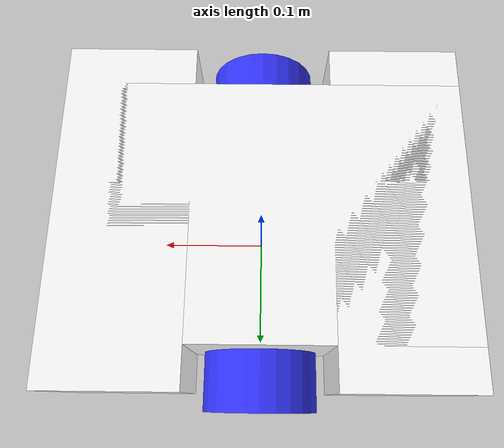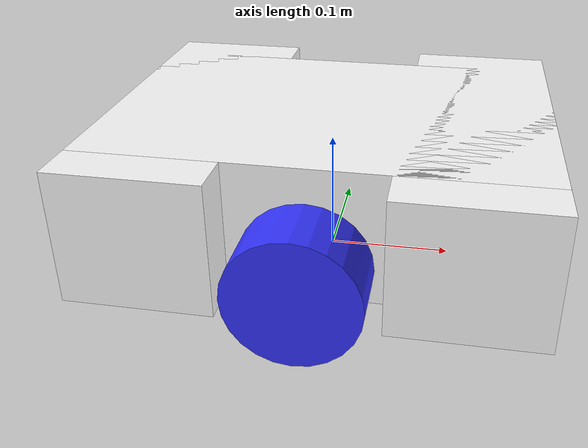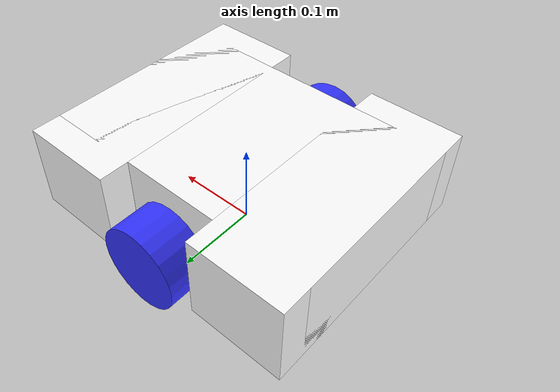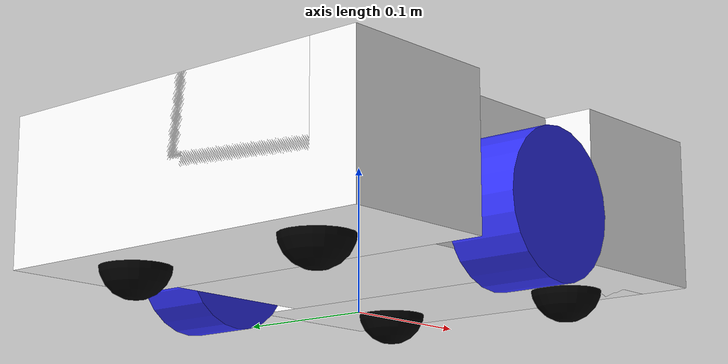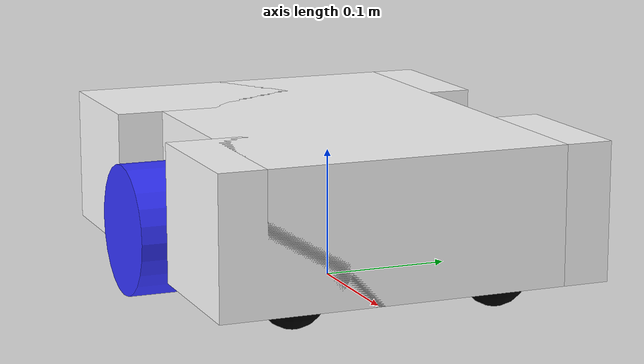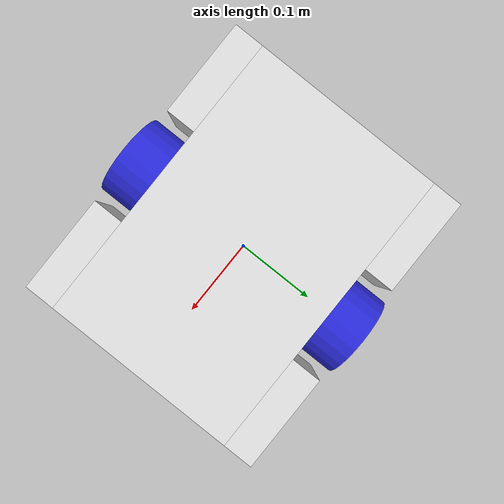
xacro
<?xml version="1.0"?>
<robot xmlns:xacro="http://www.ros.org/wiki/xacro">

    <xacro:include filename="inertial_macros.xacro"/>

    <material name="white">
        <color rgba="1 1 1 1"/>
    </material>

    <material name="orange">
        <color rgba="1.0 0.3 0.1 1"/>
    </material>

    <material name="blue">
        <color rgba="0.2 0.2 1 1"/>
    </material>

    <material name="black">
        <color rgba="0.0 0.0 0.0 1"/>
    </material>

    <!-- BASE LINK -->
    <link name="base_link">

    </link>

    <!-- BASE_FOOTPRINT LINK -->

    <joint name="base_footprint_joint" type="fixed">
        <parent link="base_link"/>
        <child link="base_footprint"/>
        <origin xyz="0 0 0" rpy="0 0 0"/>
    </joint>

    <link name="base_footprint">
    </link>

    <!-- CHASSIS LINK -->

    <joint name="chassis_joint" type="fixed">
        <parent link="base_link"/>
        <child link="chassis"/>
        <origin xyz="0 0 0"/>
    </joint>

    <link name="chassis">
        <visual>
            <origin xyz="0 0 0.075" rpy="0 0 0"/>
            <geometry>
                <box size="0.35 0.229 0.105"/>
            </geometry>
            <material name="white"/>
        </visual>
        <collision>
            <origin xyz="0 0 0.075" rpy="0 0 0"/>
            <geometry>
                <box size="0.35 0.229 0.105"/>
            </geometry>
        </collision>
        <xacro:inertial_box mass="0.5" x="0.35" y="0.229" z="0.105">
            <origin xyz="0 0 0.075" rpy="0 0 0"/>
        </xacro:inertial_box>
    </link>
    <gazebo reference="chassis">
        <material>Gazebo/White</material>
    </gazebo>

    <joint name="chassis1_joint" type="fixed">
        <parent link="chassis"/>
        <child link="chassis1"/>
        <origin xyz="0 0 0"/>
    </joint>

    <link name="chassis1">
        <visual>
            <origin xyz="0.1175 0 0.075" rpy="0 0 0"/>
            <geometry>
                <box size="0.115 0.3 0.105"/>
            </geometry>
            <material name="white"/>
        </visual>
        <collision>
            <origin xyz="0.1175 0 0.075" rpy="0 0 0"/>
            <geometry>
                <box size="0.115 0.3 0.105"/>
            </geometry>
        </collision>
        <xacro:inertial_box mass="0.5" x="0.115" y="0.3" z="0.105">
            <origin xyz="0.1175 0 0.075" rpy="0 0 0"/>
        </xacro:inertial_box>
    </link>
    <gazebo reference="chassis1">
        <material>Gazebo/White</material>
    </gazebo>

    <joint name="chassis2_joint" type="fixed">
        <parent link="chassis"/>
        <child link="chassis2"/>
        <origin xyz="0 0 0"/>
    </joint>

    <link name="chassis2">
        <visual>
            <origin xyz="-0.1175 0 0.075" rpy="0 0 0"/>
            <geometry>
                <box size="0.115 0.3 0.105"/>
            </geometry>
            <material name="white"/>
        </visual>
        <collision>
            <origin xyz="-0.1175 0 0.075" rpy="0 0 0"/>
            <geometry>
                <box size="0.115 0.3 0.105"/>
            </geometry>
        </collision>
        <xacro:inertial_box mass="0.5" x="0.115" y="0.3" z="0.105">
            <origin xyz="-0.1175 0 0.075" rpy="0 0 0"/>
        </xacro:inertial_box>
    </link>
    <gazebo reference="chassis2">
        <material>Gazebo/White</material>
    </gazebo>

    <!-- LEFT WHEEL LINK -->
    <joint name="left_wheel_joint" type="continuous">
        <parent link="base_link"/>
        <child link="left_wheel"/>
        <origin xyz="0 0.14 0.05037517" rpy="-${pi/2} 0 0"/>
        <axis xyz="0 0 1"/>
    </joint>

    <link name="left_wheel">
        <visual>
            <geometry>
                <cylinder length="0.05037517" radius="0.05" />
            </geometry>
            <material name="blue"/>
        </visual>
        <collision>
            <geometry>
                <cylinder length="0.052" radius="0.05" />
            </geometry>
        </collision>
        <xacro:inertial_cylinder mass="0.1" length="0.052" radius="0.05">
            <origin xyz="0 0 0" rpy="0 0 0"/>
        </xacro:inertial_cylinder>
    </link>

    <gazebo reference="left_wheel">
        <material>Gazebo/Blue</material>
    </gazebo>

    <!-- RIGHT WHEEL LINK -->
    <joint name="right_wheel_joint" type="continuous">
        <parent link="base_link"/>
        <child link="right_wheel"/>
        <origin xyz="0 -0.14 0.05037517" rpy="${pi/2} 0 0"/>
        <axis xyz="0 0 -1"/>
    </joint>

    <link name="right_wheel">
        <visual>
            <geometry>
                <cylinder length="0.052" radius="0.05" />
            </geometry>
            <material name="blue"/>
        </visual>
        <collision>
            <geometry>
                <cylinder length="0.052" radius="0.05" />
            </geometry>
        </collision>
        <xacro:inertial_cylinder mass="0.1" length="0.052" radius="0.05">
            <origin xyz="0 0 0" rpy="0 0 0"/>
        </xacro:inertial_cylinder>
    </link>
    <gazebo reference="right_wheel">
        <material>Gazebo/Blue</material>
    </gazebo>

    <!-- CASTER WHEEL LINK -->
    <joint name="caster_wheel_link" type="fixed">
        <parent link="chassis"/>
        <child link="caster_wheel"/>
        <origin xyz="0.13 0.08 0.02538"/>
    </joint>

    <link name="caster_wheel">
        <visual>
            <geometry>
                <sphere radius="0.025"/>
            </geometry>
            <material name="black"/>
        </visual>
        <collision>
            <geometry>
                <sphere radius="0.025"/>
            </geometry>
        </collision>
        <xacro:inertial_sphere mass="0.1" radius="0.025">
            <origin xyz="0 0 0" rpy="0 0 0"/>
        </xacro:inertial_sphere>
    </link>

    <gazebo reference="caster_wheel">
        <material>Gazebo/Black</material>
        <mu1 value="0.005"/>
        <mu2 value="0.005"/>
    </gazebo>

    <!-- CASTER WHEEL LINK -->
    <joint name="caster1_wheel_link" type="fixed">
        <parent link="chassis"/>
        <child link="caster1_wheel"/>
        <origin xyz="-0.13 0.08 0.02538"/>
    </joint>

    <link name="caster1_wheel">
        <visual>
            <geometry>
                <sphere radius="0.025"/>
            </geometry>
            <material name="black"/>
        </visual>
        <collision>
            <geometry>
                <sphere radius="0.025"/>
            </geometry>
        </collision>
        <xacro:inertial_sphere mass="0.1" radius="0.025">
            <origin xyz="0 0 0" rpy="0 0 0"/>
        </xacro:inertial_sphere>
    </link>

    <gazebo reference="caster1_wheel">
        <material>Gazebo/Black</material>
        <mu1 value="0.005"/>
        <mu2 value="0.005"/>
    </gazebo>

    <!-- CASTER WHEEL LINK -->
    <joint name="caster2_wheel_link" type="fixed">
        <parent link="chassis"/>
        <child link="caster2_wheel"/>
        <origin xyz="-0.13 -0.08 0.02538"/>
    </joint>

    <link name="caster2_wheel">
        <visual>
            <geometry>
                <sphere radius="0.025"/>
            </geometry>
            <material name="black"/>
        </visual>
        <collision>
            <geometry>
                <sphere radius="0.025"/>
            </geometry>
        </collision>
        <xacro:inertial_sphere mass="0.1" radius="0.025">
            <origin xyz="0 0 0" rpy="0 0 0"/>
        </xacro:inertial_sphere>
    </link>

    <gazebo reference="caster2_wheel">
        <material>Gazebo/Black</material>
        <mu1 value="0.005"/>
        <mu2 value="0.005"/>
    </gazebo>

    <!-- CASTER WHEEL LINK -->
    <joint name="caster3_wheel_link" type="fixed">
        <parent link="chassis"/>
        <child link="caster3_wheel"/>
        <origin xyz="0.13 -0.08 0.02538"/>
    </joint>

    <link name="caster3_wheel">
        <visual>
            <geometry>
                <sphere radius="0.025"/>
            </geometry>
            <material name="black"/>
        </visual>
        <collision>
            <geometry>
                <sphere radius="0.025"/>
            </geometry>
        </collision>
        <xacro:inertial_sphere mass="0.1" radius="0.025">
            <origin xyz="0 0 0" rpy="0 0 0"/>
        </xacro:inertial_sphere>
    </link>

    <gazebo reference="caster3_wheel">
        <material>Gazebo/Black</material>
        <mu1 value="0.005"/>
        <mu2 value="0.005"/>
    </gazebo>

</robot>
